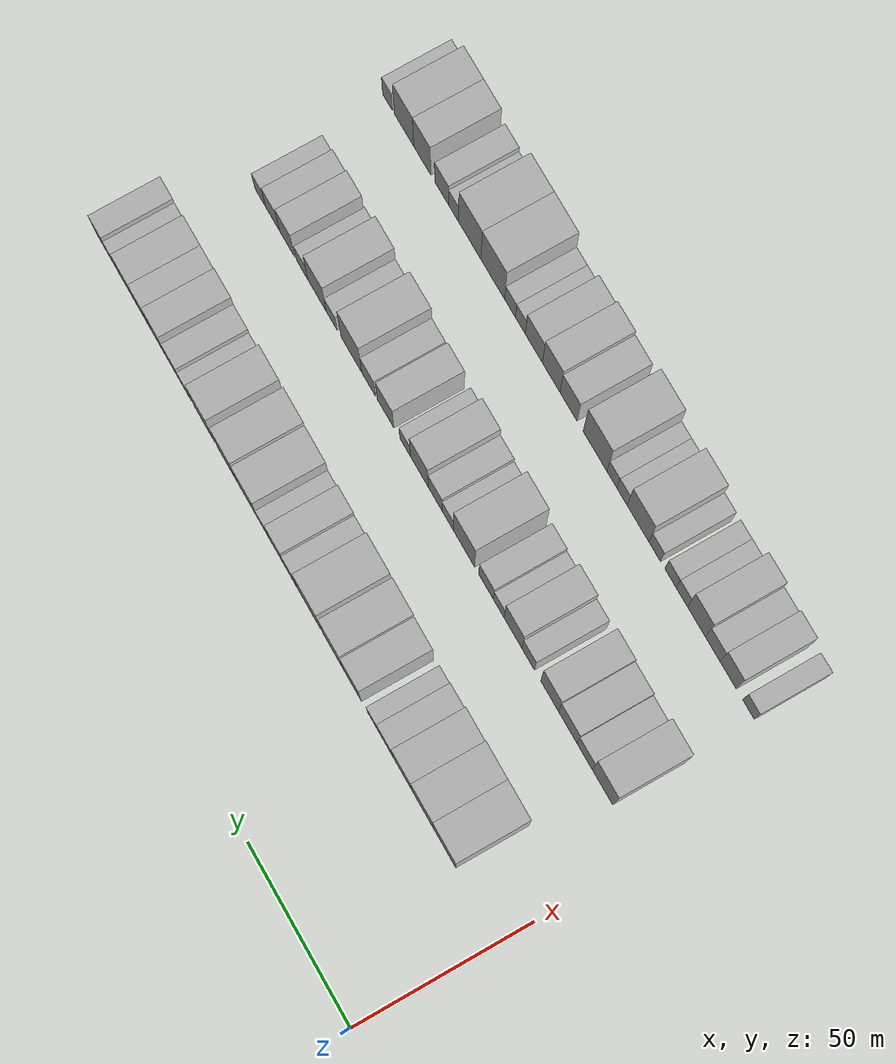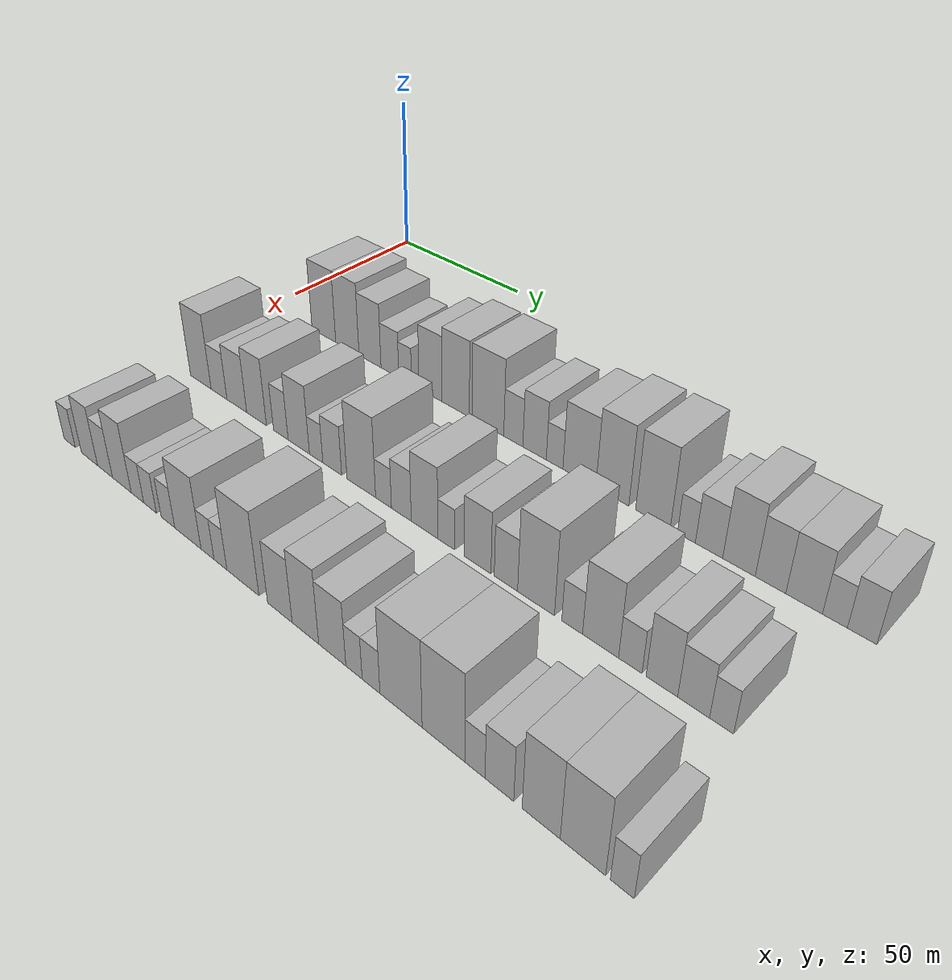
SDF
<sdf version="1.6">
 <world name="default">
  <model name="building_46">
   <static>1</static>
   <pose>50.0000 25.4755 0 0.000000 0.000000 0.000000</pose>
   <link name="link">
    <pose>0 0 12.00 0 0 0</pose>
    <collision name="collision"><geometry><box><size>20.0000 10.7924 24.0000</size></box></geometry></collision>
    <visual name="visual">
     <cast_shadows>0</cast_shadows>
     <geometry><box><size>20.0000 10.7924 24.0000</size></box></geometry>
     <material>
      <script>
       <uri>model://HANNAS_wall/materials/scripts</uri>
       <uri>model://HANNAS_wall/materials/textures</uri>
       <name>vrc/HANNAS_wall</name>
      </script>
     </material>
    </visual>
   </link>
  </model>
  <model name="building_47">
   <static>1</static>
   <pose>50.0000 35.9895 0 0.000000 0.000000 0.000000</pose>
   <link name="link">
    <pose>0 0 12.00 0 0 0</pose>
    <collision name="collision"><geometry><box><size>20.0000 10.2356 24.0000</size></box></geometry></collision>
    <visual name="visual">
     <cast_shadows>0</cast_shadows>
     <geometry><box><size>20.0000 10.2356 24.0000</size></box></geometry>
     <material>
      <script>
       <uri>model://HANNAS_wall/materials/scripts</uri>
       <uri>model://HANNAS_wall/materials/textures</uri>
       <name>vrc/HANNAS_wall</name>
      </script>
     </material>
    </visual>
   </link>
  </model>
  <model name="building_48">
   <static>1</static>
   <pose>50.0000 45.7829 0 0.000000 0.000000 0.000000</pose>
   <link name="link">
    <pose>0 0 10.50 0 0 0</pose>
    <collision name="collision"><geometry><box><size>20.0000 9.3512 21.0000</size></box></geometry></collision>
    <visual name="visual">
     <cast_shadows>0</cast_shadows>
     <geometry><box><size>20.0000 9.3512 21.0000</size></box></geometry>
     <material>
      <script>
       <uri>model://HANNAS_wall/materials/scripts</uri>
       <uri>model://HANNAS_wall/materials/textures</uri>
       <name>vrc/HANNAS_wall</name>
      </script>
     </material>
    </visual>
   </link>
  </model>
  <model name="building_49">
   <static>1</static>
   <pose>50.0000 54.1008 0 0.000000 0.000000 0.000000</pose>
   <link name="link">
    <pose>0 0 7.50 0 0 0</pose>
    <collision name="collision"><geometry><box><size>20.0000 7.2846 15.0000</size></box></geometry></collision>
    <visual name="visual">
     <cast_shadows>0</cast_shadows>
     <geometry><box><size>20.0000 7.2846 15.0000</size></box></geometry>
     <material>
      <script>
       <uri>model://HANNAS_wall/materials/scripts</uri>
       <uri>model://HANNAS_wall/materials/textures</uri>
       <name>vrc/HANNAS_wall</name>
      </script>
     </material>
    </visual>
   </link>
  </model>
  <model name="building_50">
   <static>1</static>
   <pose>50.0000 60.3114 0 0.000000 0.000000 0.000000</pose>
   <link name="link">
    <pose>0 0 6.00 0 0 0</pose>
    <collision name="collision"><geometry><box><size>20.0000 5.1365 12.0000</size></box></geometry></collision>
    <visual name="visual">
     <cast_shadows>0</cast_shadows>
     <geometry><box><size>20.0000 5.1365 12.0000</size></box></geometry>
     <material>
      <script>
       <uri>model://HANNAS_wall/materials/scripts</uri>
       <uri>model://HANNAS_wall/materials/textures</uri>
       <name>vrc/HANNAS_wall</name>
      </script>
     </material>
    </visual>
   </link>
  </model>
  <model name="building_51">
   <static>1</static>
   <pose>50.0000 70.3424 0 0.000000 0.000000 0.000000</pose>
   <link name="link">
    <pose>0 0 10.50 0 0 0</pose>
    <collision name="collision"><geometry><box><size>20.0000 8.9256 21.0000</size></box></geometry></collision>
    <visual name="visual">
     <cast_shadows>0</cast_shadows>
     <geometry><box><size>20.0000 8.9256 21.0000</size></box></geometry>
     <material>
      <script>
       <uri>model://HANNAS_wall/materials/scripts</uri>
       <uri>model://HANNAS_wall/materials/textures</uri>
       <name>vrc/HANNAS_wall</name>
      </script>
     </material>
    </visual>
   </link>
  </model>
  <model name="building_52">
   <static>1</static>
   <pose>50.0000 79.8759 0 0.000000 0.000000 0.000000</pose>
   <link name="link">
    <pose>0 0 12.00 0 0 0</pose>
    <collision name="collision"><geometry><box><size>20.0000 10.1413 24.0000</size></box></geometry></collision>
    <visual name="visual">
     <cast_shadows>0</cast_shadows>
     <geometry><box><size>20.0000 10.1413 24.0000</size></box></geometry>
     <material>
      <script>
       <uri>model://HANNAS_wall/materials/scripts</uri>
       <uri>model://HANNAS_wall/materials/textures</uri>
       <name>vrc/HANNAS_wall</name>
      </script>
     </material>
    </visual>
   </link>
  </model>
  <model name="building_53">
   <static>1</static>
   <pose>50.0000 91.6249 0 0.000000 0.000000 0.000000</pose>
   <link name="link">
    <pose>0 0 12.00 0 0 0</pose>
    <collision name="collision"><geometry><box><size>20.0000 11.3567 24.0000</size></box></geometry></collision>
    <visual name="visual">
     <cast_shadows>0</cast_shadows>
     <geometry><box><size>20.0000 11.3567 24.0000</size></box></geometry>
     <material>
      <script>
       <uri>model://HANNAS_wall/materials/scripts</uri>
       <uri>model://HANNAS_wall/materials/textures</uri>
       <name>vrc/HANNAS_wall</name>
      </script>
     </material>
    </visual>
   </link>
  </model>
  <model name="building_54">
   <static>1</static>
   <pose>50.0000 100.5949 0 0.000000 0.000000 0.000000</pose>
   <link name="link">
    <pose>0 0 7.50 0 0 0</pose>
    <collision name="collision"><geometry><box><size>20.0000 6.5832 15.0000</size></box></geometry></collision>
    <visual name="visual">
     <cast_shadows>0</cast_shadows>
     <geometry><box><size>20.0000 6.5832 15.0000</size></box></geometry>
     <material>
      <script>
       <uri>model://HANNAS_wall/materials/scripts</uri>
       <uri>model://HANNAS_wall/materials/textures</uri>
       <name>vrc/HANNAS_wall</name>
      </script>
     </material>
    </visual>
   </link>
  </model>
  <model name="building_55">
   <static>1</static>
   <pose>50.0000 107.8082 0 0.000000 0.000000 0.000000</pose>
   <link name="link">
    <pose>0 0 9.00 0 0 0</pose>
    <collision name="collision"><geometry><box><size>20.0000 7.8434 18.0000</size></box></geometry></collision>
    <visual name="visual">
     <cast_shadows>0</cast_shadows>
     <geometry><box><size>20.0000 7.8434 18.0000</size></box></geometry>
     <material>
      <script>
       <uri>model://HANNAS_wall/materials/scripts</uri>
       <uri>model://HANNAS_wall/materials/textures</uri>
       <name>vrc/HANNAS_wall</name>
      </script>
     </material>
    </visual>
   </link>
  </model>
  <model name="building_56">
   <static>1</static>
   <pose>50.0000 114.4391 0 0.000000 0.000000 0.000000</pose>
   <link name="link">
    <pose>0 0 6.00 0 0 0</pose>
    <collision name="collision"><geometry><box><size>20.0000 5.4183 12.0000</size></box></geometry></collision>
    <visual name="visual">
     <cast_shadows>0</cast_shadows>
     <geometry><box><size>20.0000 5.4183 12.0000</size></box></geometry>
     <material>
      <script>
       <uri>model://HANNAS_wall/materials/scripts</uri>
       <uri>model://HANNAS_wall/materials/textures</uri>
       <name>vrc/HANNAS_wall</name>
      </script>
     </material>
    </visual>
   </link>
  </model>
  <model name="building_57">
   <static>1</static>
   <pose>50.0000 122.3434 0 0.000000 0.000000 0.000000</pose>
   <link name="link">
    <pose>0 0 10.50 0 0 0</pose>
    <collision name="collision"><geometry><box><size>20.0000 10.3903 21.0000</size></box></geometry></collision>
    <visual name="visual">
     <cast_shadows>0</cast_shadows>
     <geometry><box><size>20.0000 10.3903 21.0000</size></box></geometry>
     <material>
      <script>
       <uri>model://HANNAS_wall/materials/scripts</uri>
       <uri>model://HANNAS_wall/materials/textures</uri>
       <name>vrc/HANNAS_wall</name>
      </script>
     </material>
    </visual>
   </link>
  </model>
  <model name="building_58">
   <static>1</static>
   <pose>50.0000 132.5185 0 0.000000 0.000000 0.000000</pose>
   <link name="link">
    <pose>0 0 12.00 0 0 0</pose>
    <collision name="collision"><geometry><box><size>20.0000 9.9599 24.0000</size></box></geometry></collision>
    <visual name="visual">
     <cast_shadows>0</cast_shadows>
     <geometry><box><size>20.0000 9.9599 24.0000</size></box></geometry>
     <material>
      <script>
       <uri>model://HANNAS_wall/materials/scripts</uri>
       <uri>model://HANNAS_wall/materials/textures</uri>
       <name>vrc/HANNAS_wall</name>
      </script>
     </material>
    </visual>
   </link>
  </model>
  <model name="building_59">
   <static>1</static>
   <pose>50.0000 144.4599 0 0.000000 0.000000 0.000000</pose>
   <link name="link">
    <pose>0 0 12.00 0 0 0</pose>
    <collision name="collision"><geometry><box><size>20.0000 9.9229 24.0000</size></box></geometry></collision>
    <visual name="visual">
     <cast_shadows>0</cast_shadows>
     <geometry><box><size>20.0000 9.9229 24.0000</size></box></geometry>
     <material>
      <script>
       <uri>model://HANNAS_wall/materials/scripts</uri>
       <uri>model://HANNAS_wall/materials/textures</uri>
       <name>vrc/HANNAS_wall</name>
      </script>
     </material>
    </visual>
   </link>
  </model>
  <model name="building_60">
   <static>1</static>
   <pose>50.0000 153.8903 0 0.000000 0.000000 0.000000</pose>
   <link name="link">
    <pose>0 0 6.00 0 0 0</pose>
    <collision name="collision"><geometry><box><size>20.0000 4.9381 12.0000</size></box></geometry></collision>
    <visual name="visual">
     <cast_shadows>0</cast_shadows>
     <geometry><box><size>20.0000 4.9381 12.0000</size></box></geometry>
     <material>
      <script>
       <uri>model://HANNAS_wall/materials/scripts</uri>
       <uri>model://HANNAS_wall/materials/textures</uri>
       <name>vrc/HANNAS_wall</name>
      </script>
     </material>
    </visual>
   </link>
  </model>
  <model name="building_61">
   <static>1</static>
   <pose>50.0000 160.0116 0 0.000000 0.000000 0.000000</pose>
   <link name="link">
    <pose>0 0 7.50 0 0 0</pose>
    <collision name="collision"><geometry><box><size>20.0000 7.3044 15.0000</size></box></geometry></collision>
    <visual name="visual">
     <cast_shadows>0</cast_shadows>
     <geometry><box><size>20.0000 7.3044 15.0000</size></box></geometry>
     <material>
      <script>
       <uri>model://HANNAS_wall/materials/scripts</uri>
       <uri>model://HANNAS_wall/materials/textures</uri>
       <name>vrc/HANNAS_wall</name>
      </script>
     </material>
    </visual>
   </link>
  </model>
  <model name="building_62">
   <static>1</static>
   <pose>50.0000 167.8711 0 0.000000 0.000000 0.000000</pose>
   <link name="link">
    <pose>0 0 10.50 0 0 0</pose>
    <collision name="collision"><geometry><box><size>20.0000 8.4147 21.0000</size></box></geometry></collision>
    <visual name="visual">
     <cast_shadows>0</cast_shadows>
     <geometry><box><size>20.0000 8.4147 21.0000</size></box></geometry>
     <material>
      <script>
       <uri>model://HANNAS_wall/materials/scripts</uri>
       <uri>model://HANNAS_wall/materials/textures</uri>
       <name>vrc/HANNAS_wall</name>
      </script>
     </material>
    </visual>
   </link>
  </model>
  <model name="building_63">
   <static>1</static>
   <pose>50.0000 175.8764 0 0.000000 0.000000 0.000000</pose>
   <link name="link">
    <pose>0 0 9.00 0 0 0</pose>
    <collision name="collision"><geometry><box><size>20.0000 7.5958 18.0000</size></box></geometry></collision>
    <visual name="visual">
     <cast_shadows>0</cast_shadows>
     <geometry><box><size>20.0000 7.5958 18.0000</size></box></geometry>
     <material>
      <script>
       <uri>model://HANNAS_wall/materials/scripts</uri>
       <uri>model://HANNAS_wall/materials/textures</uri>
       <name>vrc/HANNAS_wall</name>
      </script>
     </material>
    </visual>
   </link>
  </model>
  <model name="building_64">
   <static>1</static>
   <pose>50.0000 184.0584 0 0.000000 0.000000 0.000000</pose>
   <link name="link">
    <pose>0 0 9.00 0 0 0</pose>
    <collision name="collision"><geometry><box><size>20.0000 8.7682 18.0000</size></box></geometry></collision>
    <visual name="visual">
     <cast_shadows>0</cast_shadows>
     <geometry><box><size>20.0000 8.7682 18.0000</size></box></geometry>
     <material>
      <script>
       <uri>model://HANNAS_wall/materials/scripts</uri>
       <uri>model://HANNAS_wall/materials/textures</uri>
       <name>vrc/HANNAS_wall</name>
      </script>
     </material>
    </visual>
   </link>
  </model>
  <model name="building_65">
   <static>1</static>
   <pose>50.0000 191.3211 0 0.000000 0.000000 0.000000</pose>
   <link name="link">
    <pose>0 0 6.00 0 0 0</pose>
    <collision name="collision"><geometry><box><size>20.0000 5.7573 12.0000</size></box></geometry></collision>
    <visual name="visual">
     <cast_shadows>0</cast_shadows>
     <geometry><box><size>20.0000 5.7573 12.0000</size></box></geometry>
     <material>
      <script>
       <uri>model://HANNAS_wall/materials/scripts</uri>
       <uri>model://HANNAS_wall/materials/textures</uri>
       <name>vrc/HANNAS_wall</name>
      </script>
     </material>
    </visual>
   </link>
  </model>
  <model name="building_66">
   <static>1</static>
   <pose>50.0000 197.4962 0 0.000000 0.000000 0.000000</pose>
   <link name="link">
    <pose>0 0 7.50 0 0 0</pose>
    <collision name="collision"><geometry><box><size>20.0000 6.5929 15.0000</size></box></geometry></collision>
    <visual name="visual">
     <cast_shadows>0</cast_shadows>
     <geometry><box><size>20.0000 6.5929 15.0000</size></box></geometry>
     <material>
      <script>
       <uri>model://HANNAS_wall/materials/scripts</uri>
       <uri>model://HANNAS_wall/materials/textures</uri>
       <name>vrc/HANNAS_wall</name>
      </script>
     </material>
    </visual>
   </link>
  </model>
  <model name="building_130">
   <static>1</static>
   <pose>90.0000 19.2876 0 0.000000 0.000000 0.000000</pose>
   <link name="link">
    <pose>0 0 12.00 0 0 0</pose>
    <collision name="collision"><geometry><box><size>20.0000 9.7369 24.0000</size></box></geometry></collision>
    <visual name="visual">
     <cast_shadows>0</cast_shadows>
     <geometry><box><size>20.0000 9.7369 24.0000</size></box></geometry>
     <material>
      <script>
       <uri>model://HANNAS_wall/materials/scripts</uri>
       <uri>model://HANNAS_wall/materials/textures</uri>
       <name>vrc/HANNAS_wall</name>
      </script>
     </material>
    </visual>
   </link>
  </model>
  <model name="building_131">
   <static>1</static>
   <pose>90.0000 27.7870 0 0.000000 0.000000 0.000000</pose>
   <link name="link">
    <pose>0 0 7.50 0 0 0</pose>
    <collision name="collision"><geometry><box><size>20.0000 7.2619 15.0000</size></box></geometry></collision>
    <visual name="visual">
     <cast_shadows>0</cast_shadows>
     <geometry><box><size>20.0000 7.2619 15.0000</size></box></geometry>
     <material>
      <script>
       <uri>model://HANNAS_wall/materials/scripts</uri>
       <uri>model://HANNAS_wall/materials/textures</uri>
       <name>vrc/HANNAS_wall</name>
      </script>
     </material>
    </visual>
   </link>
  </model>
  <model name="building_132">
   <static>1</static>
   <pose>90.0000 35.8160 0 0.000000 0.000000 0.000000</pose>
   <link name="link">
    <pose>0 0 9.00 0 0 0</pose>
    <collision name="collision"><geometry><box><size>20.0000 8.7962 18.0000</size></box></geometry></collision>
    <visual name="visual">
     <cast_shadows>0</cast_shadows>
     <geometry><box><size>20.0000 8.7962 18.0000</size></box></geometry>
     <material>
      <script>
       <uri>model://HANNAS_wall/materials/scripts</uri>
       <uri>model://HANNAS_wall/materials/textures</uri>
       <name>vrc/HANNAS_wall</name>
      </script>
     </material>
    </visual>
   </link>
  </model>
  <model name="building_133">
   <static>1</static>
   <pose>90.0000 44.4766 0 0.000000 0.000000 0.000000</pose>
   <link name="link">
    <pose>0 0 10.50 0 0 0</pose>
    <collision name="collision"><geometry><box><size>20.0000 8.5251 21.0000</size></box></geometry></collision>
    <visual name="visual">
     <cast_shadows>0</cast_shadows>
     <geometry><box><size>20.0000 8.5251 21.0000</size></box></geometry>
     <material>
      <script>
       <uri>model://HANNAS_wall/materials/scripts</uri>
       <uri>model://HANNAS_wall/materials/textures</uri>
       <name>vrc/HANNAS_wall</name>
      </script>
     </material>
    </visual>
   </link>
  </model>
  <model name="building_134">
   <static>1</static>
   <pose>90.0000 54.7629 0 0.000000 0.000000 0.000000</pose>
   <link name="link">
    <pose>0 0 7.50 0 0 0</pose>
    <collision name="collision"><geometry><box><size>20.0000 6.0475 15.0000</size></box></geometry></collision>
    <visual name="visual">
     <cast_shadows>0</cast_shadows>
     <geometry><box><size>20.0000 6.0475 15.0000</size></box></geometry>
     <material>
      <script>
       <uri>model://HANNAS_wall/materials/scripts</uri>
       <uri>model://HANNAS_wall/materials/textures</uri>
       <name>vrc/HANNAS_wall</name>
      </script>
     </material>
    </visual>
   </link>
  </model>
  <model name="building_135">
   <static>1</static>
   <pose>90.0000 62.0658 0 0.000000 0.000000 0.000000</pose>
   <link name="link">
    <pose>0 0 10.50 0 0 0</pose>
    <collision name="collision"><geometry><box><size>20.0000 8.5582 21.0000</size></box></geometry></collision>
    <visual name="visual">
     <cast_shadows>0</cast_shadows>
     <geometry><box><size>20.0000 8.5582 21.0000</size></box></geometry>
     <material>
      <script>
       <uri>model://HANNAS_wall/materials/scripts</uri>
       <uri>model://HANNAS_wall/materials/textures</uri>
       <name>vrc/HANNAS_wall</name>
      </script>
     </material>
    </visual>
   </link>
  </model>
  <model name="building_136">
   <static>1</static>
   <pose>90.0000 68.9728 0 0.000000 0.000000 0.000000</pose>
   <link name="link">
    <pose>0 0 6.00 0 0 0</pose>
    <collision name="collision"><geometry><box><size>20.0000 5.2559 12.0000</size></box></geometry></collision>
    <visual name="visual">
     <cast_shadows>0</cast_shadows>
     <geometry><box><size>20.0000 5.2559 12.0000</size></box></geometry>
     <material>
      <script>
       <uri>model://HANNAS_wall/materials/scripts</uri>
       <uri>model://HANNAS_wall/materials/textures</uri>
       <name>vrc/HANNAS_wall</name>
      </script>
     </material>
    </visual>
   </link>
  </model>
  <model name="building_137">
   <static>1</static>
   <pose>90.0000 75.1796 0 0.000000 0.000000 0.000000</pose>
   <link name="link">
    <pose>0 0 7.50 0 0 0</pose>
    <collision name="collision"><geometry><box><size>20.0000 7.1578 15.0000</size></box></geometry></collision>
    <visual name="visual">
     <cast_shadows>0</cast_shadows>
     <geometry><box><size>20.0000 7.1578 15.0000</size></box></geometry>
     <material>
      <script>
       <uri>model://HANNAS_wall/materials/scripts</uri>
       <uri>model://HANNAS_wall/materials/textures</uri>
       <name>vrc/HANNAS_wall</name>
      </script>
     </material>
    </visual>
   </link>
  </model>
  <model name="building_138">
   <static>1</static>
   <pose>90.0000 85.9662 0 0.000000 0.000000 0.000000</pose>
   <link name="link">
    <pose>0 0 12.00 0 0 0</pose>
    <collision name="collision"><geometry><box><size>20.0000 10.4153 24.0000</size></box></geometry></collision>
    <visual name="visual">
     <cast_shadows>0</cast_shadows>
     <geometry><box><size>20.0000 10.4153 24.0000</size></box></geometry>
     <material>
      <script>
       <uri>model://HANNAS_wall/materials/scripts</uri>
       <uri>model://HANNAS_wall/materials/textures</uri>
       <name>vrc/HANNAS_wall</name>
      </script>
     </material>
    </visual>
   </link>
  </model>
  <model name="building_139">
   <static>1</static>
   <pose>90.0000 93.9606 0 0.000000 0.000000 0.000000</pose>
   <link name="link">
    <pose>0 0 6.00 0 0 0</pose>
    <collision name="collision"><geometry><box><size>20.0000 5.5736 12.0000</size></box></geometry></collision>
    <visual name="visual">
     <cast_shadows>0</cast_shadows>
     <geometry><box><size>20.0000 5.5736 12.0000</size></box></geometry>
     <material>
      <script>
       <uri>model://HANNAS_wall/materials/scripts</uri>
       <uri>model://HANNAS_wall/materials/textures</uri>
       <name>vrc/HANNAS_wall</name>
      </script>
     </material>
    </visual>
   </link>
  </model>
  <model name="building_140">
   <static>1</static>
   <pose>90.0000 100.1361 0 0.000000 0.000000 0.000000</pose>
   <link name="link">
    <pose>0 0 7.50 0 0 0</pose>
    <collision name="collision"><geometry><box><size>20.0000 6.7773 15.0000</size></box></geometry></collision>
    <visual name="visual">
     <cast_shadows>0</cast_shadows>
     <geometry><box><size>20.0000 6.7773 15.0000</size></box></geometry>
     <material>
      <script>
       <uri>model://HANNAS_wall/materials/scripts</uri>
       <uri>model://HANNAS_wall/materials/textures</uri>
       <name>vrc/HANNAS_wall</name>
      </script>
     </material>
    </visual>
   </link>
  </model>
  <model name="building_141">
   <static>1</static>
   <pose>90.0000 107.9413 0 0.000000 0.000000 0.000000</pose>
   <link name="link">
    <pose>0 0 10.50 0 0 0</pose>
    <collision name="collision"><geometry><box><size>20.0000 8.8331 21.0000</size></box></geometry></collision>
    <visual name="visual">
     <cast_shadows>0</cast_shadows>
     <geometry><box><size>20.0000 8.8331 21.0000</size></box></geometry>
     <material>
      <script>
       <uri>model://HANNAS_wall/materials/scripts</uri>
       <uri>model://HANNAS_wall/materials/textures</uri>
       <name>vrc/HANNAS_wall</name>
      </script>
     </material>
    </visual>
   </link>
  </model>
  <model name="building_142">
   <static>1</static>
   <pose>90.0000 115.0408 0 0.000000 0.000000 0.000000</pose>
   <link name="link">
    <pose>0 0 6.00 0 0 0</pose>
    <collision name="collision"><geometry><box><size>20.0000 5.3658 12.0000</size></box></geometry></collision>
    <visual name="visual">
     <cast_shadows>0</cast_shadows>
     <geometry><box><size>20.0000 5.3658 12.0000</size></box></geometry>
     <material>
      <script>
       <uri>model://HANNAS_wall/materials/scripts</uri>
       <uri>model://HANNAS_wall/materials/textures</uri>
       <name>vrc/HANNAS_wall</name>
      </script>
     </material>
    </visual>
   </link>
  </model>
  <model name="building_143">
   <static>1</static>
   <pose>90.0000 124.8154 0 0.000000 0.000000 0.000000</pose>
   <link name="link">
    <pose>0 0 9.00 0 0 0</pose>
    <collision name="collision"><geometry><box><size>20.0000 8.1834 18.0000</size></box></geometry></collision>
    <visual name="visual">
     <cast_shadows>0</cast_shadows>
     <geometry><box><size>20.0000 8.1834 18.0000</size></box></geometry>
     <material>
      <script>
       <uri>model://HANNAS_wall/materials/scripts</uri>
       <uri>model://HANNAS_wall/materials/textures</uri>
       <name>vrc/HANNAS_wall</name>
      </script>
     </material>
    </visual>
   </link>
  </model>
  <model name="building_144">
   <static>1</static>
   <pose>90.0000 133.3439 0 0.000000 0.000000 0.000000</pose>
   <link name="link">
    <pose>0 0 7.50 0 0 0</pose>
    <collision name="collision"><geometry><box><size>20.0000 6.8734 15.0000</size></box></geometry></collision>
    <visual name="visual">
     <cast_shadows>0</cast_shadows>
     <geometry><box><size>20.0000 6.8734 15.0000</size></box></geometry>
     <material>
      <script>
       <uri>model://HANNAS_wall/materials/scripts</uri>
       <uri>model://HANNAS_wall/materials/textures</uri>
       <name>vrc/HANNAS_wall</name>
      </script>
     </material>
    </visual>
   </link>
  </model>
  <model name="building_145">
   <static>1</static>
   <pose>90.0000 141.9950 0 0.000000 0.000000 0.000000</pose>
   <link name="link">
    <pose>0 0 12.00 0 0 0</pose>
    <collision name="collision"><geometry><box><size>20.0000 10.4288 24.0000</size></box></geometry></collision>
    <visual name="visual">
     <cast_shadows>0</cast_shadows>
     <geometry><box><size>20.0000 10.4288 24.0000</size></box></geometry>
     <material>
      <script>
       <uri>model://HANNAS_wall/materials/scripts</uri>
       <uri>model://HANNAS_wall/materials/textures</uri>
       <name>vrc/HANNAS_wall</name>
      </script>
     </material>
    </visual>
   </link>
  </model>
  <model name="building_146">
   <static>1</static>
   <pose>90.0000 152.0111 0 0.000000 0.000000 0.000000</pose>
   <link name="link">
    <pose>0 0 6.00 0 0 0</pose>
    <collision name="collision"><geometry><box><size>20.0000 5.6034 12.0000</size></box></geometry></collision>
    <visual name="visual">
     <cast_shadows>0</cast_shadows>
     <geometry><box><size>20.0000 5.6034 12.0000</size></box></geometry>
     <material>
      <script>
       <uri>model://HANNAS_wall/materials/scripts</uri>
       <uri>model://HANNAS_wall/materials/textures</uri>
       <name>vrc/HANNAS_wall</name>
      </script>
     </material>
    </visual>
   </link>
  </model>
  <model name="building_147">
   <static>1</static>
   <pose>90.0000 159.4811 0 0.000000 0.000000 0.000000</pose>
   <link name="link">
    <pose>0 0 10.50 0 0 0</pose>
    <collision name="collision"><geometry><box><size>20.0000 9.3367 21.0000</size></box></geometry></collision>
    <visual name="visual">
     <cast_shadows>0</cast_shadows>
     <geometry><box><size>20.0000 9.3367 21.0000</size></box></geometry>
     <material>
      <script>
       <uri>model://HANNAS_wall/materials/scripts</uri>
       <uri>model://HANNAS_wall/materials/textures</uri>
       <name>vrc/HANNAS_wall</name>
      </script>
     </material>
    </visual>
   </link>
  </model>
  <model name="building_148">
   <static>1</static>
   <pose>90.0000 167.0755 0 0.000000 0.000000 0.000000</pose>
   <link name="link">
    <pose>0 0 6.00 0 0 0</pose>
    <collision name="collision"><geometry><box><size>20.0000 5.8521 12.0000</size></box></geometry></collision>
    <visual name="visual">
     <cast_shadows>0</cast_shadows>
     <geometry><box><size>20.0000 5.8521 12.0000</size></box></geometry>
     <material>
      <script>
       <uri>model://HANNAS_wall/materials/scripts</uri>
       <uri>model://HANNAS_wall/materials/textures</uri>
       <name>vrc/HANNAS_wall</name>
      </script>
     </material>
    </visual>
   </link>
  </model>
  <model name="building_149">
   <static>1</static>
   <pose>90.0000 174.7873 0 0.000000 0.000000 0.000000</pose>
   <link name="link">
    <pose>0 0 9.00 0 0 0</pose>
    <collision name="collision"><geometry><box><size>20.0000 7.5715 18.0000</size></box></geometry></collision>
    <visual name="visual">
     <cast_shadows>0</cast_shadows>
     <geometry><box><size>20.0000 7.5715 18.0000</size></box></geometry>
     <material>
      <script>
       <uri>model://HANNAS_wall/materials/scripts</uri>
       <uri>model://HANNAS_wall/materials/textures</uri>
       <name>vrc/HANNAS_wall</name>
      </script>
     </material>
    </visual>
   </link>
  </model>
  <model name="building_150">
   <static>1</static>
   <pose>90.0000 182.2488 0 0.000000 0.000000 0.000000</pose>
   <link name="link">
    <pose>0 0 7.50 0 0 0</pose>
    <collision name="collision"><geometry><box><size>20.0000 7.3515 15.0000</size></box></geometry></collision>
    <visual name="visual">
     <cast_shadows>0</cast_shadows>
     <geometry><box><size>20.0000 7.3515 15.0000</size></box></geometry>
     <material>
      <script>
       <uri>model://HANNAS_wall/materials/scripts</uri>
       <uri>model://HANNAS_wall/materials/textures</uri>
       <name>vrc/HANNAS_wall</name>
      </script>
     </material>
    </visual>
   </link>
  </model>
  <model name="building_151">
   <static>1</static>
   <pose>90.0000 188.6150 0 0.000000 0.000000 0.000000</pose>
   <link name="link">
    <pose>0 0 6.00 0 0 0</pose>
    <collision name="collision"><geometry><box><size>20.0000 5.3809 12.0000</size></box></geometry></collision>
    <visual name="visual">
     <cast_shadows>0</cast_shadows>
     <geometry><box><size>20.0000 5.3809 12.0000</size></box></geometry>
     <material>
      <script>
       <uri>model://HANNAS_wall/materials/scripts</uri>
       <uri>model://HANNAS_wall/materials/textures</uri>
       <name>vrc/HANNAS_wall</name>
      </script>
     </material>
    </visual>
   </link>
  </model>
  <model name="building_219">
   <static>1</static>
   <pose>130.0000 17.8649 0 0.000000 0.000000 0.000000</pose>
   <link name="link">
    <pose>0 0 6.00 0 0 0</pose>
    <collision name="collision"><geometry><box><size>20.0000 5.4875 12.0000</size></box></geometry></collision>
    <visual name="visual">
     <cast_shadows>0</cast_shadows>
     <geometry><box><size>20.0000 5.4875 12.0000</size></box></geometry>
     <material>
      <script>
       <uri>model://HANNAS_wall/materials/scripts</uri>
       <uri>model://HANNAS_wall/materials/textures</uri>
       <name>vrc/HANNAS_wall</name>
      </script>
     </material>
    </visual>
   </link>
  </model>
  <model name="building_220">
   <static>1</static>
   <pose>130.0000 27.4561 0 0.000000 0.000000 0.000000</pose>
   <link name="link">
    <pose>0 0 9.00 0 0 0</pose>
    <collision name="collision"><geometry><box><size>20.0000 7.6949 18.0000</size></box></geometry></collision>
    <visual name="visual">
     <cast_shadows>0</cast_shadows>
     <geometry><box><size>20.0000 7.6949 18.0000</size></box></geometry>
     <material>
      <script>
       <uri>model://HANNAS_wall/materials/scripts</uri>
       <uri>model://HANNAS_wall/materials/textures</uri>
       <name>vrc/HANNAS_wall</name>
      </script>
     </material>
    </visual>
   </link>
  </model>
  <model name="building_221">
   <static>1</static>
   <pose>130.0000 34.7679 0 0.000000 0.000000 0.000000</pose>
   <link name="link">
    <pose>0 0 7.50 0 0 0</pose>
    <collision name="collision"><geometry><box><size>20.0000 6.9287 15.0000</size></box></geometry></collision>
    <visual name="visual">
     <cast_shadows>0</cast_shadows>
     <geometry><box><size>20.0000 6.9287 15.0000</size></box></geometry>
     <material>
      <script>
       <uri>model://HANNAS_wall/materials/scripts</uri>
       <uri>model://HANNAS_wall/materials/textures</uri>
       <name>vrc/HANNAS_wall</name>
      </script>
     </material>
    </visual>
   </link>
  </model>
  <model name="building_222">
   <static>1</static>
   <pose>130.0000 42.4444 0 0.000000 0.000000 0.000000</pose>
   <link name="link">
    <pose>0 0 10.50 0 0 0</pose>
    <collision name="collision"><geometry><box><size>20.0000 8.4244 21.0000</size></box></geometry></collision>
    <visual name="visual">
     <cast_shadows>0</cast_shadows>
     <geometry><box><size>20.0000 8.4244 21.0000</size></box></geometry>
     <material>
      <script>
       <uri>model://HANNAS_wall/materials/scripts</uri>
       <uri>model://HANNAS_wall/materials/textures</uri>
       <name>vrc/HANNAS_wall</name>
      </script>
     </material>
    </visual>
   </link>
  </model>
  <model name="building_223">
   <static>1</static>
   <pose>130.0000 49.3795 0 0.000000 0.000000 0.000000</pose>
   <link name="link">
    <pose>0 0 6.00 0 0 0</pose>
    <collision name="collision"><geometry><box><size>20.0000 5.4459 12.0000</size></box></geometry></collision>
    <visual name="visual">
     <cast_shadows>0</cast_shadows>
     <geometry><box><size>20.0000 5.4459 12.0000</size></box></geometry>
     <material>
      <script>
       <uri>model://HANNAS_wall/materials/scripts</uri>
       <uri>model://HANNAS_wall/materials/textures</uri>
       <name>vrc/HANNAS_wall</name>
      </script>
     </material>
    </visual>
   </link>
  </model>
  <model name="building_224">
   <static>1</static>
   <pose>130.0000 54.7893 0 0.000000 0.000000 0.000000</pose>
   <link name="link">
    <pose>0 0 6.00 0 0 0</pose>
    <collision name="collision"><geometry><box><size>20.0000 5.3737 12.0000</size></box></geometry></collision>
    <visual name="visual">
     <cast_shadows>0</cast_shadows>
     <geometry><box><size>20.0000 5.3737 12.0000</size></box></geometry>
     <material>
      <script>
       <uri>model://HANNAS_wall/materials/scripts</uri>
       <uri>model://HANNAS_wall/materials/textures</uri>
       <name>vrc/HANNAS_wall</name>
      </script>
     </material>
    </visual>
   </link>
  </model>
  <model name="building_225">
   <static>1</static>
   <pose>130.0000 62.2704 0 0.000000 0.000000 0.000000</pose>
   <link name="link">
    <pose>0 0 6.00 0 0 0</pose>
    <collision name="collision"><geometry><box><size>20.0000 5.5884 12.0000</size></box></geometry></collision>
    <visual name="visual">
     <cast_shadows>0</cast_shadows>
     <geometry><box><size>20.0000 5.5884 12.0000</size></box></geometry>
     <material>
      <script>
       <uri>model://HANNAS_wall/materials/scripts</uri>
       <uri>model://HANNAS_wall/materials/textures</uri>
       <name>vrc/HANNAS_wall</name>
      </script>
     </material>
    </visual>
   </link>
  </model>
  <model name="building_226">
   <static>1</static>
   <pose>130.0000 70.2904 0 0.000000 0.000000 0.000000</pose>
   <link name="link">
    <pose>0 0 10.50 0 0 0</pose>
    <collision name="collision"><geometry><box><size>20.0000 10.4517 21.0000</size></box></geometry></collision>
    <visual name="visual">
     <cast_shadows>0</cast_shadows>
     <geometry><box><size>20.0000 10.4517 21.0000</size></box></geometry>
     <material>
      <script>
       <uri>model://HANNAS_wall/materials/scripts</uri>
       <uri>model://HANNAS_wall/materials/textures</uri>
       <name>vrc/HANNAS_wall</name>
      </script>
     </material>
    </visual>
   </link>
  </model>
  <model name="building_227">
   <static>1</static>
   <pose>130.0000 77.9930 0 0.000000 0.000000 0.000000</pose>
   <link name="link">
    <pose>0 0 6.00 0 0 0</pose>
    <collision name="collision"><geometry><box><size>20.0000 4.9535 12.0000</size></box></geometry></collision>
    <visual name="visual">
     <cast_shadows>0</cast_shadows>
     <geometry><box><size>20.0000 4.9535 12.0000</size></box></geometry>
     <material>
      <script>
       <uri>model://HANNAS_wall/materials/scripts</uri>
       <uri>model://HANNAS_wall/materials/textures</uri>
       <name>vrc/HANNAS_wall</name>
      </script>
     </material>
    </visual>
   </link>
  </model>
  <model name="building_228">
   <static>1</static>
   <pose>130.0000 82.8815 0 0.000000 0.000000 0.000000</pose>
   <link name="link">
    <pose>0 0 6.00 0 0 0</pose>
    <collision name="collision"><geometry><box><size>20.0000 4.8236 12.0000</size></box></geometry></collision>
    <visual name="visual">
     <cast_shadows>0</cast_shadows>
     <geometry><box><size>20.0000 4.8236 12.0000</size></box></geometry>
     <material>
      <script>
       <uri>model://HANNAS_wall/materials/scripts</uri>
       <uri>model://HANNAS_wall/materials/textures</uri>
       <name>vrc/HANNAS_wall</name>
      </script>
     </material>
    </visual>
   </link>
  </model>
  <model name="building_229">
   <static>1</static>
   <pose>130.0000 91.0780 0 0.000000 0.000000 0.000000</pose>
   <link name="link">
    <pose>0 0 12.00 0 0 0</pose>
    <collision name="collision"><geometry><box><size>20.0000 11.5694 24.0000</size></box></geometry></collision>
    <visual name="visual">
     <cast_shadows>0</cast_shadows>
     <geometry><box><size>20.0000 11.5694 24.0000</size></box></geometry>
     <material>
      <script>
       <uri>model://HANNAS_wall/materials/scripts</uri>
       <uri>model://HANNAS_wall/materials/textures</uri>
       <name>vrc/HANNAS_wall</name>
      </script>
     </material>
    </visual>
   </link>
  </model>
  <model name="building_230">
   <static>1</static>
   <pose>130.0000 104.0377 0 0.000000 0.000000 0.000000</pose>
   <link name="link">
    <pose>0 0 9.00 0 0 0</pose>
    <collision name="collision"><geometry><box><size>20.0000 8.3500 18.0000</size></box></geometry></collision>
    <visual name="visual">
     <cast_shadows>0</cast_shadows>
     <geometry><box><size>20.0000 8.3500 18.0000</size></box></geometry>
     <material>
      <script>
       <uri>model://HANNAS_wall/materials/scripts</uri>
       <uri>model://HANNAS_wall/materials/textures</uri>
       <name>vrc/HANNAS_wall</name>
      </script>
     </material>
    </visual>
   </link>
  </model>
  <model name="building_231">
   <static>1</static>
   <pose>130.0000 112.5362 0 0.000000 0.000000 0.000000</pose>
   <link name="link">
    <pose>0 0 10.50 0 0 0</pose>
    <collision name="collision"><geometry><box><size>20.0000 8.6469 21.0000</size></box></geometry></collision>
    <visual name="visual">
     <cast_shadows>0</cast_shadows>
     <geometry><box><size>20.0000 8.6469 21.0000</size></box></geometry>
     <material>
      <script>
       <uri>model://HANNAS_wall/materials/scripts</uri>
       <uri>model://HANNAS_wall/materials/textures</uri>
       <name>vrc/HANNAS_wall</name>
      </script>
     </material>
    </visual>
   </link>
  </model>
  <model name="building_232">
   <static>1</static>
   <pose>130.0000 121.0831 0 0.000000 0.000000 0.000000</pose>
   <link name="link">
    <pose>0 0 9.00 0 0 0</pose>
    <collision name="collision"><geometry><box><size>20.0000 8.4469 18.0000</size></box></geometry></collision>
    <visual name="visual">
     <cast_shadows>0</cast_shadows>
     <geometry><box><size>20.0000 8.4469 18.0000</size></box></geometry>
     <material>
      <script>
       <uri>model://HANNAS_wall/materials/scripts</uri>
       <uri>model://HANNAS_wall/materials/textures</uri>
       <name>vrc/HANNAS_wall</name>
      </script>
     </material>
    </visual>
   </link>
  </model>
  <model name="building_233">
   <static>1</static>
   <pose>130.0000 127.7571 0 0.000000 0.000000 0.000000</pose>
   <link name="link">
    <pose>0 0 6.00 0 0 0</pose>
    <collision name="collision"><geometry><box><size>20.0000 4.9010 12.0000</size></box></geometry></collision>
    <visual name="visual">
     <cast_shadows>0</cast_shadows>
     <geometry><box><size>20.0000 4.9010 12.0000</size></box></geometry>
     <material>
      <script>
       <uri>model://HANNAS_wall/materials/scripts</uri>
       <uri>model://HANNAS_wall/materials/textures</uri>
       <name>vrc/HANNAS_wall</name>
      </script>
     </material>
    </visual>
   </link>
  </model>
  <model name="building_234">
   <static>1</static>
   <pose>130.0000 132.8184 0 0.000000 0.000000 0.000000</pose>
   <link name="link">
    <pose>0 0 6.00 0 0 0</pose>
    <collision name="collision"><geometry><box><size>20.0000 5.2216 12.0000</size></box></geometry></collision>
    <visual name="visual">
     <cast_shadows>0</cast_shadows>
     <geometry><box><size>20.0000 5.2216 12.0000</size></box></geometry>
     <material>
      <script>
       <uri>model://HANNAS_wall/materials/scripts</uri>
       <uri>model://HANNAS_wall/materials/textures</uri>
       <name>vrc/HANNAS_wall</name>
      </script>
     </material>
    </visual>
   </link>
  </model>
  <model name="building_235">
   <static>1</static>
   <pose>130.0000 141.3405 0 0.000000 0.000000 0.000000</pose>
   <link name="link">
    <pose>0 0 12.00 0 0 0</pose>
    <collision name="collision"><geometry><box><size>20.0000 11.8225 24.0000</size></box></geometry></collision>
    <visual name="visual">
     <cast_shadows>0</cast_shadows>
     <geometry><box><size>20.0000 11.8225 24.0000</size></box></geometry>
     <material>
      <script>
       <uri>model://HANNAS_wall/materials/scripts</uri>
       <uri>model://HANNAS_wall/materials/textures</uri>
       <name>vrc/HANNAS_wall</name>
      </script>
     </material>
    </visual>
   </link>
  </model>
  <model name="building_236">
   <static>1</static>
   <pose>130.0000 152.8632 0 0.000000 0.000000 0.000000</pose>
   <link name="link">
    <pose>0 0 12.00 0 0 0</pose>
    <collision name="collision"><geometry><box><size>20.0000 11.2230 24.0000</size></box></geometry></collision>
    <visual name="visual">
     <cast_shadows>0</cast_shadows>
     <geometry><box><size>20.0000 11.2230 24.0000</size></box></geometry>
     <material>
      <script>
       <uri>model://HANNAS_wall/materials/scripts</uri>
       <uri>model://HANNAS_wall/materials/textures</uri>
       <name>vrc/HANNAS_wall</name>
      </script>
     </material>
    </visual>
   </link>
  </model>
  <model name="building_237">
   <static>1</static>
   <pose>130.0000 161.0231 0 0.000000 0.000000 0.000000</pose>
   <link name="link">
    <pose>0 0 6.00 0 0 0</pose>
    <collision name="collision"><geometry><box><size>20.0000 5.0968 12.0000</size></box></geometry></collision>
    <visual name="visual">
     <cast_shadows>0</cast_shadows>
     <geometry><box><size>20.0000 5.0968 12.0000</size></box></geometry>
     <material>
      <script>
       <uri>model://HANNAS_wall/materials/scripts</uri>
       <uri>model://HANNAS_wall/materials/textures</uri>
       <name>vrc/HANNAS_wall</name>
      </script>
     </material>
    </visual>
   </link>
  </model>
  <model name="building_238">
   <static>1</static>
   <pose>130.0000 167.0608 0 0.000000 0.000000 0.000000</pose>
   <link name="link">
    <pose>0 0 7.50 0 0 0</pose>
    <collision name="collision"><geometry><box><size>20.0000 6.9785 15.0000</size></box></geometry></collision>
    <visual name="visual">
     <cast_shadows>0</cast_shadows>
     <geometry><box><size>20.0000 6.9785 15.0000</size></box></geometry>
     <material>
      <script>
       <uri>model://HANNAS_wall/materials/scripts</uri>
       <uri>model://HANNAS_wall/materials/textures</uri>
       <name>vrc/HANNAS_wall</name>
      </script>
     </material>
    </visual>
   </link>
  </model>
  <model name="building_239">
   <static>1</static>
   <pose>130.0000 176.9204 0 0.000000 0.000000 0.000000</pose>
   <link name="link">
    <pose>0 0 10.50 0 0 0</pose>
    <collision name="collision"><geometry><box><size>20.0000 8.7408 21.0000</size></box></geometry></collision>
    <visual name="visual">
     <cast_shadows>0</cast_shadows>
     <geometry><box><size>20.0000 8.7408 21.0000</size></box></geometry>
     <material>
      <script>
       <uri>model://HANNAS_wall/materials/scripts</uri>
       <uri>model://HANNAS_wall/materials/textures</uri>
       <name>vrc/HANNAS_wall</name>
      </script>
     </material>
    </visual>
   </link>
  </model>
  <model name="building_240">
   <static>1</static>
   <pose>130.0000 186.2145 0 0.000000 0.000000 0.000000</pose>
   <link name="link">
    <pose>0 0 10.50 0 0 0</pose>
    <collision name="collision"><geometry><box><size>20.0000 9.8474 21.0000</size></box></geometry></collision>
    <visual name="visual">
     <cast_shadows>0</cast_shadows>
     <geometry><box><size>20.0000 9.8474 21.0000</size></box></geometry>
     <material>
      <script>
       <uri>model://HANNAS_wall/materials/scripts</uri>
       <uri>model://HANNAS_wall/materials/textures</uri>
       <name>vrc/HANNAS_wall</name>
      </script>
     </material>
    </visual>
   </link>
  </model>
  <model name="building_241">
   <static>1</static>
   <pose>130.0000 194.6120 0 0.000000 0.000000 0.000000</pose>
   <link name="link">
    <pose>0 0 6.00 0 0 0</pose>
    <collision name="collision"><geometry><box><size>20.0000 4.9476 12.0000</size></box></geometry></collision>
    <visual name="visual">
     <cast_shadows>0</cast_shadows>
     <geometry><box><size>20.0000 4.9476 12.0000</size></box></geometry>
     <material>
      <script>
       <uri>model://HANNAS_wall/materials/scripts</uri>
       <uri>model://HANNAS_wall/materials/textures</uri>
       <name>vrc/HANNAS_wall</name>
      </script>
     </material>
    </visual>
   </link>
  </model>
 </world>
</sdf>
